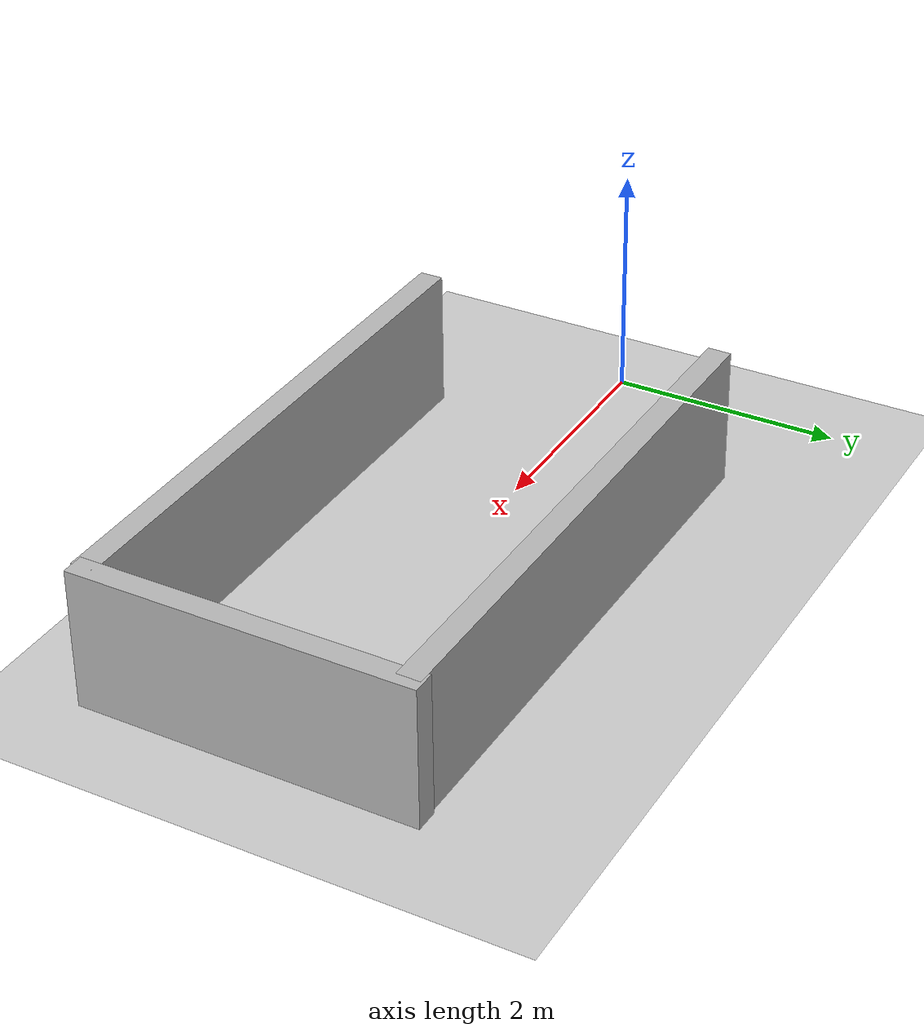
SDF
<?xml version="1.0"?>
<sdf version="1.6">
  <world name="v2-02-maneuver-dead-end">
    <gravity>0 0 -9.81</gravity>
    <physics name="v2_deterministic" type="ode">
      <max_step_size>0.002</max_step_size>
      <real_time_update_rate>500</real_time_update_rate>
    </physics>
    <include>
      <uri>model://sun</uri>
    </include>
    <include>
      <uri>model://ground_plane</uri>
    </include>
    <model name="dead-end-left-wall">
      <static>true</static>
      <pose>3.509528404 1.340964241 0.600000000 0 0 -0.003464446</pose>
      <link name="link">
        <collision name="collision">
          <geometry>
            <box>
              <size>5.000000 0.200000 1.200000</size>
            </box>
          </geometry>
        </collision>
        <visual name="visual">
          <geometry>
            <box>
              <size>5.000000 0.200000 1.200000</size>
            </box>
          </geometry>
        </visual>
      </link>
    </model>
    <model name="dead-end-right-wall">
      <static>true</static>
      <pose>3.492664819 -1.361727330 0.600000000 0 0 0.000101650</pose>
      <link name="link">
        <collision name="collision">
          <geometry>
            <box>
              <size>5.000000 0.200000 1.200000</size>
            </box>
          </geometry>
        </collision>
        <visual name="visual">
          <geometry>
            <box>
              <size>5.000000 0.200000 1.200000</size>
            </box>
          </geometry>
        </visual>
      </link>
    </model>
    <model name="dead-end-back-wall">
      <static>true</static>
      <pose>6.000025525 0.002940671 0.600000000 0 0 -0.004761999</pose>
      <link name="link">
        <collision name="collision">
          <geometry>
            <box>
              <size>0.200000 2.900000 1.200000</size>
            </box>
          </geometry>
        </collision>
        <visual name="visual">
          <geometry>
            <box>
              <size>0.200000 2.900000 1.200000</size>
            </box>
          </geometry>
        </visual>
      </link>
    </model>
  </world>
</sdf>
